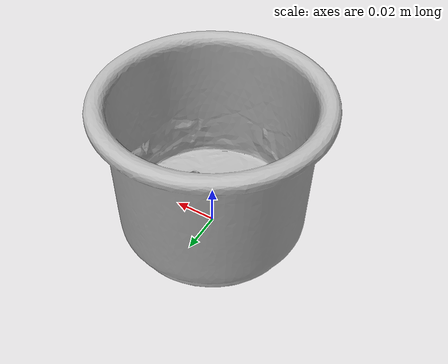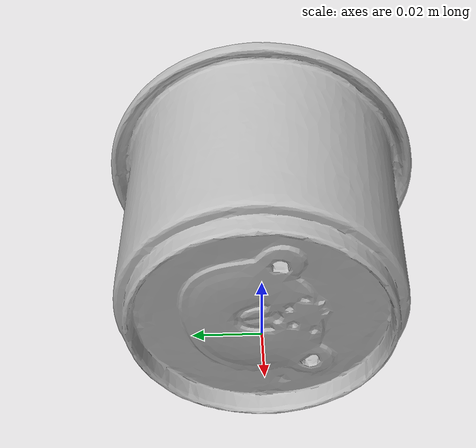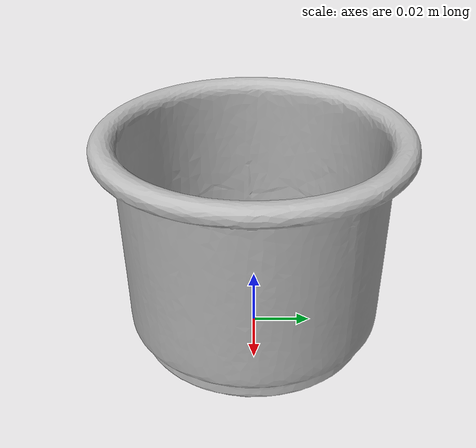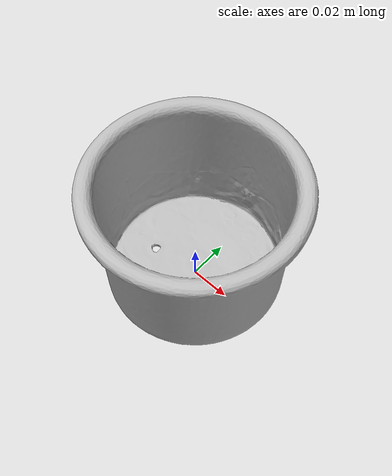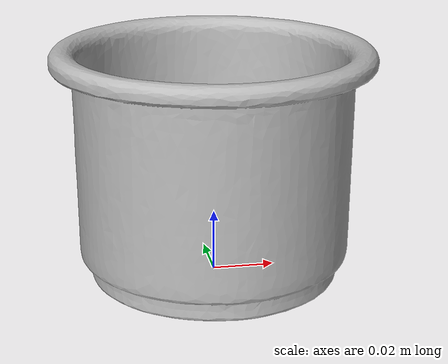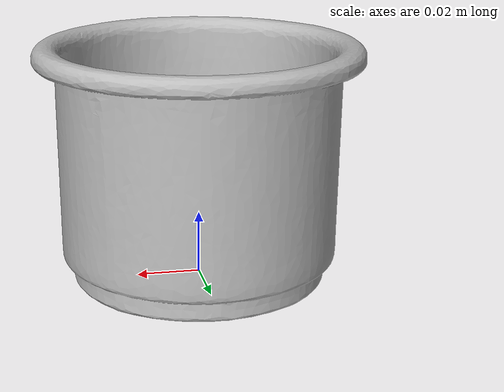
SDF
<?xml version="1.0" ?>
<sdf version='1.8'>
  <model name='ycb_065-j_cups'>
    <link name='body'>
      <inertial>
        <mass>0.013</mass>
        <pose>0.000496834484 0.000561901331 0.0367562563 0 0 0</pose>
        <inertia>
          <ixx>1.92123215708e-05</ixx>
          <ixy>-1.48924632512e-08</ixy>
          <ixz>1.21003046628e-07</ixz>
          <iyy>1.94491019421e-05</iyy>
          <iyz>6.470846738e-08</iyz>
          <izz>2.2355604837e-05</izz>
        </inertia>
      </inertial>
      <visual name='ycb_065-j_cups_visual'>
        <pose>0.023666 0.01685 0.000286 0 0 0</pose>
        <geometry>
          <mesh>
            <uri>model://ycb_065-j_cups/meshes/textured.dae</uri>
          </mesh>
        </geometry>
      </visual>
      <collision name='ycb_065-j_cups_collision'>
        <pose>0.023666 0.01685 0.000286 0 0 0</pose>
        <geometry>
          <mesh>
            <uri>model://ycb_065-j_cups/meshes/nontextured.stl</uri>
          </mesh>
        </geometry>
        <max_contacts>10</max_contacts>
        <surface>
          <contact>
            <ode>
              <kp>1e15</kp>
              <kd>1e13</kd>
            </ode>
          </contact>
        </surface>
      </collision>
    </link>
  </model>
</sdf>
